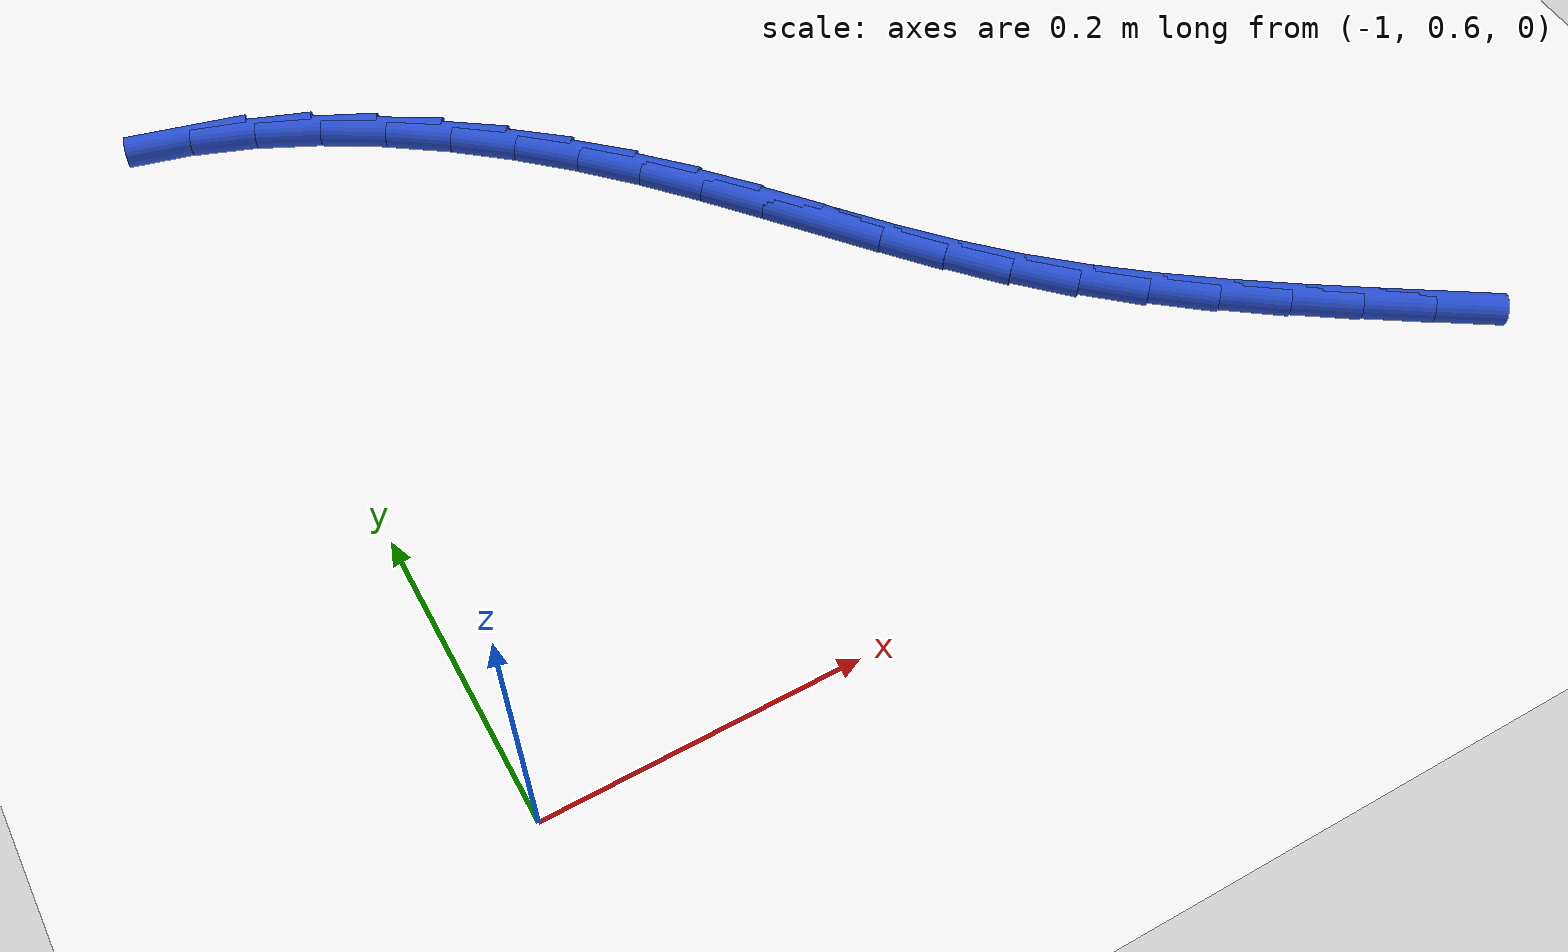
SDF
<sdf version="1.6">
 <world name="default">
  <model name="ground_plane">
   <static>1</static>
   <link name="link">
    <collision name="collision">
     <geometry><plane><normal>0 0 1</normal><size>100 100</size></plane></geometry>
     <surface><friction><ode><mu>100</mu><mu2>50</mu2></ode></friction></surface>
    </collision>
    <visual name="visual">
     <cast_shadows>0</cast_shadows>
     <geometry><plane><normal>0 0 1</normal><size>100 100</size></plane></geometry>
     <material>
      <script><uri>file://media/materials/scripts/gazebo.material</uri><name>Gazebo/WhiteGlow</name></script>
     </material>
    </visual>
   </link>
  </model>
  <model name="line">
   <link name="link_18">
    <pose>-0.3611403588173749 0.6306542355246728 0.01 0 1.57 -0.5723054349931989</pose>
    <collision name="collision">
     <geometry><cylinder><radius>0.01</radius><length>0.08</length></cylinder></geometry>
    </collision>
    <visual name="visual">
     <material>
      <script><name>Gazebo/Blue</name><uri>file://media/materials/scripts/gazebo.material</uri></script>
     </material>
     <geometry><cylinder><radius>0.01</radius><length>0.08</length></cylinder></geometry>
    </visual>
   </link>
   <link name="link_19">
    <pose>-0.39871917789379296 0.654863486789325 0.01 0 1.57 -0.5813545546562985</pose>
    <collision name="collision">
     <geometry><cylinder><radius>0.01</radius><length>0.08</length></cylinder></geometry>
    </collision>
    <visual name="visual">
     <material>
      <script><name>Gazebo/Blue</name><uri>file://media/materials/scripts/gazebo.material</uri></script>
     </material>
     <geometry><cylinder><radius>0.01</radius><length>0.08</length></cylinder></geometry>
    </visual>
   </link>
   <link name="link_20">
    <pose>-0.4360384223358684 0.6793861922362435 0.01 0 1.57 -0.6005301611040683</pose>
    <collision name="collision">
     <geometry><cylinder><radius>0.01</radius><length>0.08</length></cylinder></geometry>
    </collision>
    <visual name="visual">
     <material>
      <script><name>Gazebo/Blue</name><uri>file://media/materials/scripts/gazebo.material</uri></script>
     </material>
     <geometry><cylinder><radius>0.01</radius><length>0.08</length></cylinder></geometry>
    </visual>
   </link>
   <link name="link_21">
    <pose>-0.4727144976034193 0.7045062006390335 0.01 0 1.57 -0.630159722550051</pose>
    <collision name="collision">
     <geometry><cylinder><radius>0.01</radius><length>0.08</length></cylinder></geometry>
    </collision>
    <visual name="visual">
     <material>
      <script><name>Gazebo/Blue</name><uri>file://media/materials/scripts/gazebo.material</uri></script>
     </material>
     <geometry><cylinder><radius>0.01</radius><length>0.08</length></cylinder></geometry>
    </visual>
   </link>
   <link name="link_22">
    <pose>-0.5083638091562636 0.7305073607712995 0.01 0 1.57 -0.6707210525257213</pose>
    <collision name="collision">
     <geometry><cylinder><radius>0.01</radius><length>0.08</length></cylinder></geometry>
    </collision>
    <visual name="visual">
     <material>
      <script><name>Gazebo/Blue</name><uri>file://media/materials/scripts/gazebo.material</uri></script>
     </material>
     <geometry><cylinder><radius>0.01</radius><length>0.08</length></cylinder></geometry>
    </visual>
   </link>
   <link name="link_23">
    <pose>-0.5426027624542193 0.7576735214066475 0.01 0 1.57 -0.722755208579692</pose>
    <collision name="collision">
     <geometry><cylinder><radius>0.01</radius><length>0.08</length></cylinder></geometry>
    </collision>
    <visual name="visual">
     <material>
      <script><name>Gazebo/Blue</name><uri>file://media/materials/scripts/gazebo.material</uri></script>
     </material>
     <geometry><cylinder><radius>0.01</radius><length>0.08</length></cylinder></geometry>
    </visual>
   </link>
   <link name="link_24">
    <pose>-0.5750477629571047 0.7862885313186818 0.01 0 1.57 -0.783985759773363</pose>
    <collision name="collision">
     <geometry><cylinder><radius>0.01</radius><length>0.08</length></cylinder></geometry>
    </collision>
    <visual name="visual">
     <material>
      <script><name>Gazebo/Blue</name><uri>file://media/materials/scripts/gazebo.material</uri></script>
     </material>
     <geometry><cylinder><radius>0.01</radius><length>0.08</length></cylinder></geometry>
    </visual>
   </link>
   <link name="link_25">
    <pose>-0.6054123855893518 0.8165675006648849 0.01 0 1.57 -0.834698354072756</pose>
    <collision name="collision">
     <geometry><cylinder><radius>0.01</radius><length>0.08</length></cylinder></geometry>
    </collision>
    <visual name="visual">
     <material>
      <script><name>Gazebo/Blue</name><uri>file://media/materials/scripts/gazebo.material</uri></script>
     </material>
     <geometry><cylinder><radius>0.01</radius><length>0.08</length></cylinder></geometry>
    </visual>
   </link>
   <link name="link_26">
    <pose>-0.6341025545493222 0.8482357650511061 0.01 0 1.57 -0.8656365697440467</pose>
    <collision name="collision">
     <geometry><cylinder><radius>0.01</radius><length>0.08</length></cylinder></geometry>
    </collision>
    <visual name="visual">
     <material>
      <script><name>Gazebo/Blue</name><uri>file://media/materials/scripts/gazebo.material</uri></script>
     </material>
     <geometry><cylinder><radius>0.01</radius><length>0.08</length></cylinder></geometry>
    </visual>
   </link>
   <link name="link_27">
    <pose>-0.6618246935859582 0.8808060838038596 0.01 0 1.57 -0.8765080178297449</pose>
    <collision name="collision">
     <geometry><cylinder><radius>0.01</radius><length>0.08</length></cylinder></geometry>
    </collision>
    <visual name="visual">
     <material>
      <script><name>Gazebo/Blue</name><uri>file://media/materials/scripts/gazebo.material</uri></script>
     </material>
     <geometry><cylinder><radius>0.01</radius><length>0.08</length></cylinder></geometry>
    </visual>
   </link>
   <link name="link_28">
    <pose>-0.6892864458568106 0.9137903536282546 0.01 0 1.57 -0.8674427906371375</pose>
    <collision name="collision">
     <geometry><cylinder><radius>0.01</radius><length>0.08</length></cylinder></geometry>
    </collision>
    <visual name="visual">
     <material>
      <script><name>Gazebo/Blue</name><uri>file://media/materials/scripts/gazebo.material</uri></script>
     </material>
     <geometry><cylinder><radius>0.01</radius><length>0.08</length></cylinder></geometry>
    </visual>
   </link>
   <link name="link_29">
    <pose>-0.7171954545194295 0.9467004712293997 0.01 0 1.57 -0.8388216203982715</pose>
    <collision name="collision">
     <geometry><cylinder><radius>0.01</radius><length>0.08</length></cylinder></geometry>
    </collision>
    <visual name="visual">
     <material>
      <script><name>Gazebo/Blue</name><uri>file://media/materials/scripts/gazebo.material</uri></script>
     </material>
     <geometry><cylinder><radius>0.01</radius><length>0.08</length></cylinder></geometry>
    </visual>
   </link>
   <link name="link_30">
    <pose>-0.7462593627313647 0.9790483333124035 0.01 0 1.57 -0.7926557752086739</pose>
    <collision name="collision">
     <geometry><cylinder><radius>0.01</radius><length>0.08</length></cylinder></geometry>
    </collision>
    <visual name="visual">
     <material>
      <script><name>Gazebo/Blue</name><uri>file://media/materials/scripts/gazebo.material</uri></script>
     </material>
     <geometry><cylinder><radius>0.01</radius><length>0.08</length></cylinder></geometry>
    </visual>
   </link>
   <link name="link_31">
    <pose>-0.7771070527146782 1.0103470658249196 0.01 0 1.57 -0.7382358331725314</pose>
    <collision name="collision">
     <geometry><cylinder><radius>0.01</radius><length>0.08</length></cylinder></geometry>
    </collision>
    <visual name="visual">
     <material>
      <script><name>Gazebo/Blue</name><uri>file://media/materials/scripts/gazebo.material</uri></script>
     </material>
     <geometry><cylinder><radius>0.01</radius><length>0.08</length></cylinder></geometry>
    </visual>
   </link>
   <link name="link_32">
    <pose>-0.8098276493996408 1.0401182188479947 0.01 0 1.57 -0.6783333662681563</pose>
    <collision name="collision">
     <geometry><cylinder><radius>0.01</radius><length>0.08</length></cylinder></geometry>
    </collision>
    <visual name="visual">
     <material>
      <script><name>Gazebo/Blue</name><uri>file://media/materials/scripts/gazebo.material</uri></script>
     </material>
     <geometry><cylinder><radius>0.01</radius><length>0.08</length></cylinder></geometry>
    </visual>
   </link>
   <link name="link_33">
    <pose>-0.8442839836222729 1.067886874293862 0.01 0 1.57 -0.6117185717407283</pose>
    <collision name="collision">
     <geometry><cylinder><radius>0.01</radius><length>0.08</length></cylinder></geometry>
    </collision>
    <visual name="visual">
     <material>
      <script><name>Gazebo/Blue</name><uri>file://media/materials/scripts/gazebo.material</uri></script>
     </material>
     <geometry><cylinder><radius>0.01</radius><length>0.08</length></cylinder></geometry>
    </visual>
   </link>
   <link name="link_34">
    <pose>-0.8803381139421738 1.0931781261278755 0.01 0 1.57 -0.537091593927464</pose>
    <collision name="collision">
     <geometry><cylinder><radius>0.01</radius><length>0.08</length></cylinder></geometry>
    </collision>
    <visual name="visual">
     <material>
      <script><name>Gazebo/Blue</name><uri>file://media/materials/scripts/gazebo.material</uri></script>
     </material>
     <geometry><cylinder><radius>0.01</radius><length>0.08</length></cylinder></geometry>
    </visual>
   </link>
   <link name="link_35">
    <pose>-0.9178520989189433 1.1155170683153879 0.01 0 1.57 -0.4531654059440723</pose>
    <collision name="collision">
     <geometry><cylinder><radius>0.01</radius><length>0.08</length></cylinder></geometry>
    </collision>
    <visual name="visual">
     <material>
      <script><name>Gazebo/Blue</name><uri>file://media/materials/scripts/gazebo.material</uri></script>
     </material>
     <geometry><cylinder><radius>0.01</radius><length>0.08</length></cylinder></geometry>
    </visual>
   </link>
   <link name="link_36">
    <pose>-0.9566879971121814 1.1344287948217533 0.01 0 1.57 -0.35881784714192916</pose>
    <collision name="collision">
     <geometry><cylinder><radius>0.01</radius><length>0.08</length></cylinder></geometry>
    </collision>
    <visual name="visual">
     <material>
      <script><name>Gazebo/Blue</name><uri>file://media/materials/scripts/gazebo.material</uri></script>
     </material>
     <geometry><cylinder><radius>0.01</radius><length>0.08</length></cylinder></geometry>
    </visual>
   </link>
   <link name="link_37">
    <pose>-0.996707867081488 1.149438399612325 0.01 0 1.57 -0.2533835315275436</pose>
    <collision name="collision">
     <geometry><cylinder><radius>0.01</radius><length>0.08</length></cylinder></geometry>
    </collision>
    <visual name="visual">
     <material>
      <script><name>Gazebo/Blue</name><uri>file://media/materials/scripts/gazebo.material</uri></script>
     </material>
     <geometry><cylinder><radius>0.01</radius><length>0.08</length></cylinder></geometry>
    </visual>
   </link>
  </model>
 </world>
</sdf>
